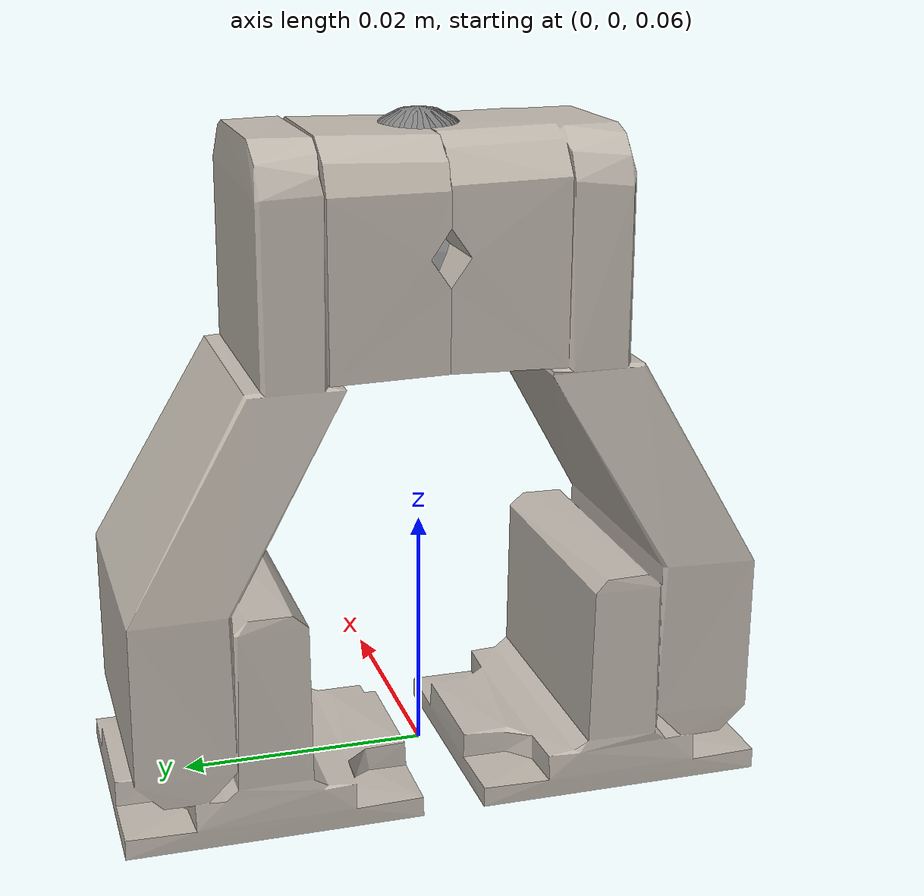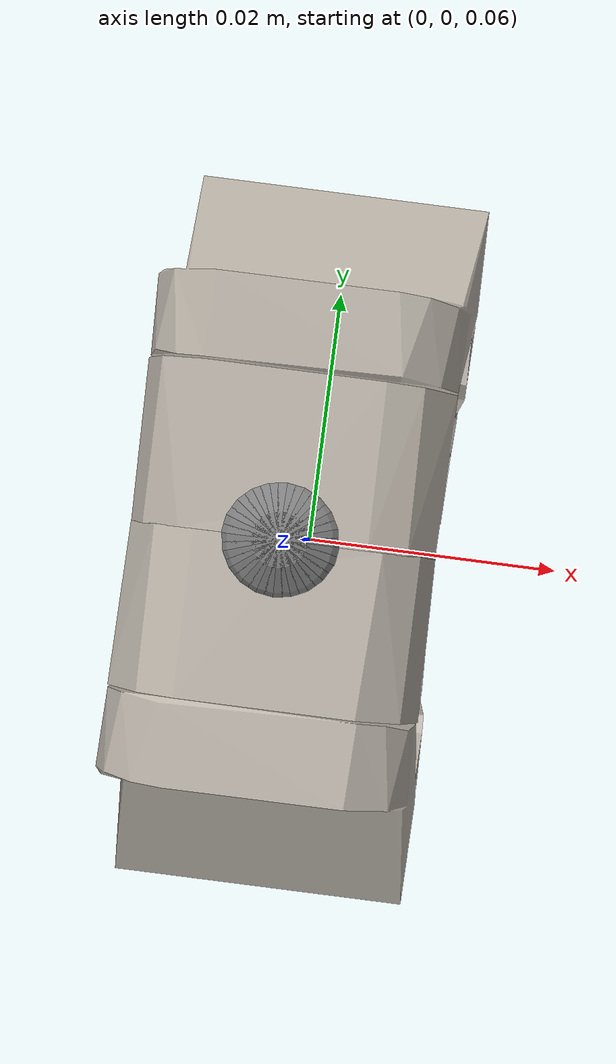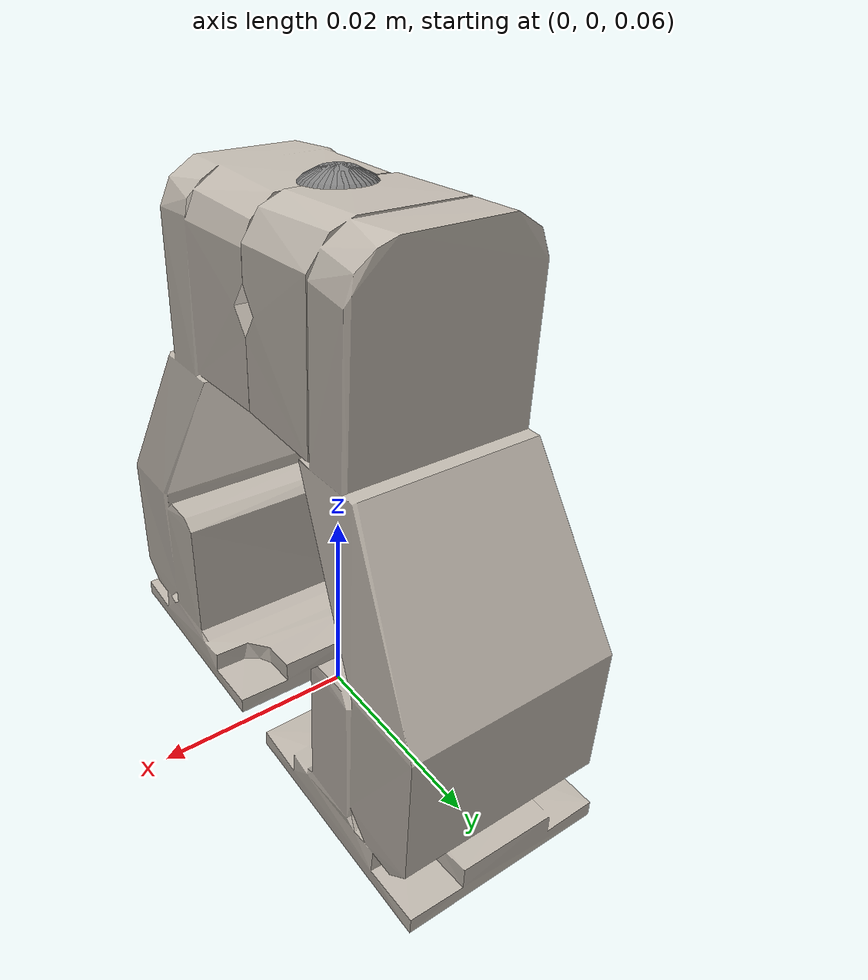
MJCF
<mujoco>
  <compiler angle="radian" meshdir="./mesh" texturedir="./texture" />
  <asset>
    <mesh name="finger" file="finger.obj" />
    <texture name="panda" file="panda.png" type="2d" />
    <material name="panda" texture="panda" shininess=".4" specular=".4" />
    <material name="panda_white" rgba="1 1 1 1" shininess="0.4" specular="0.4" />
  </asset>
  <default>
      <velocity kv="10" ctrllimited="true" ctrlrange="-1 1" forcelimited='true' forcerange='-10 10'/>
      <geom solref="0.002 1" solimp="0.95 0.99 0.001" conaffinity="1" friction="1.0 0.1 0.001" contype="1" condim="6" />
  </default>
  <worldbody>
    <body name="gripper">
      <body name="panda_leftfinger" pos="0 0 0.0584">
        <inertial pos="0 0 0" mass="1.5e-02" diaginertia="2.3749e-06 2.3749e-06 7.5e-07"/>
        <joint name="panda_finger_joint1" pos="0 0 0" axis="0 1 0" type="slide" limited="true" range="0 0.04" />
        <geom name="left_finger" type="mesh" material="panda" mesh="finger" />
        <site name="left_finger_ee" pos="0.0 0.0 0.05" />
      </body>
      <body name="panda_rightfinger" pos="0 0 0.0584" euler="0 0 3.1415">
        <inertial pos="0 0 0" mass="1.5e-02" diaginertia="2.3749e-06 2.3749e-06 7.5e-07"/>
        <joint name="panda_finger_joint2" pos="0 0 0" axis="0 1 0" type="slide" limited="true" range="0 0.04" />
        <geom name="right_finger" type="mesh" material="panda" mesh="finger" condim="1" />
        <site name="right_finger_ee" pos="0.0 0.0 0.05" />
      </body>
      <site name="gripper_ee" pos="0.0 0 0.1" quat="0.5 0.5 -0.5 0.5 "/>
    </body>
  </worldbody>
    <tendon>
        <fixed name="split">
            <joint joint="panda_finger_joint1" coef="1"/>
            <joint joint="panda_finger_joint2" coef="1"/>
        </fixed>
    </tendon>
    <actuator>
        <velocity name="finger_actuator" tendon="split" />
    </actuator>
  </mujoco>
